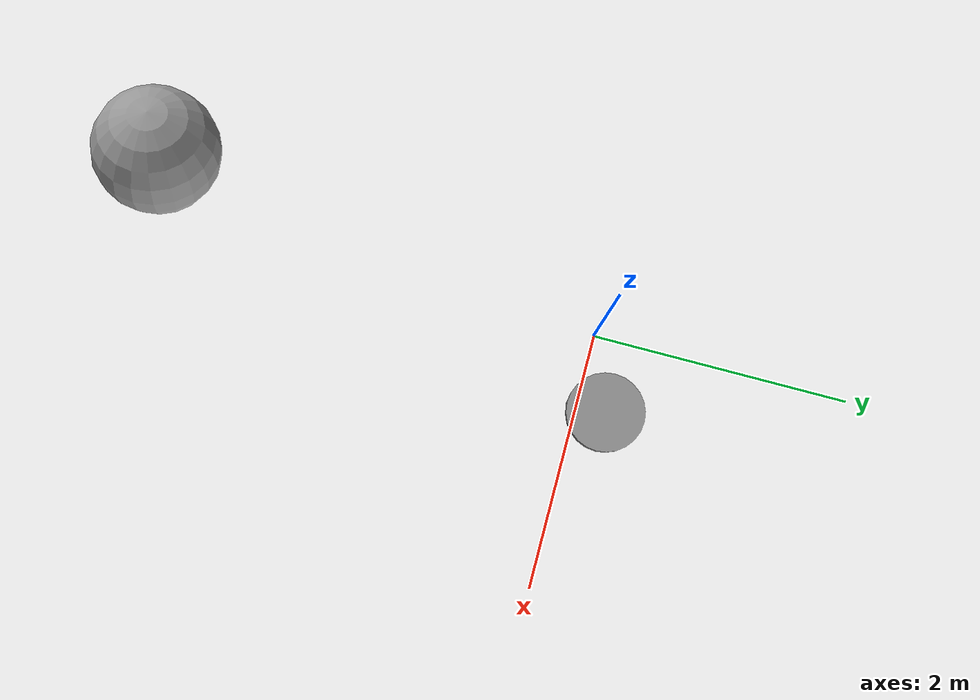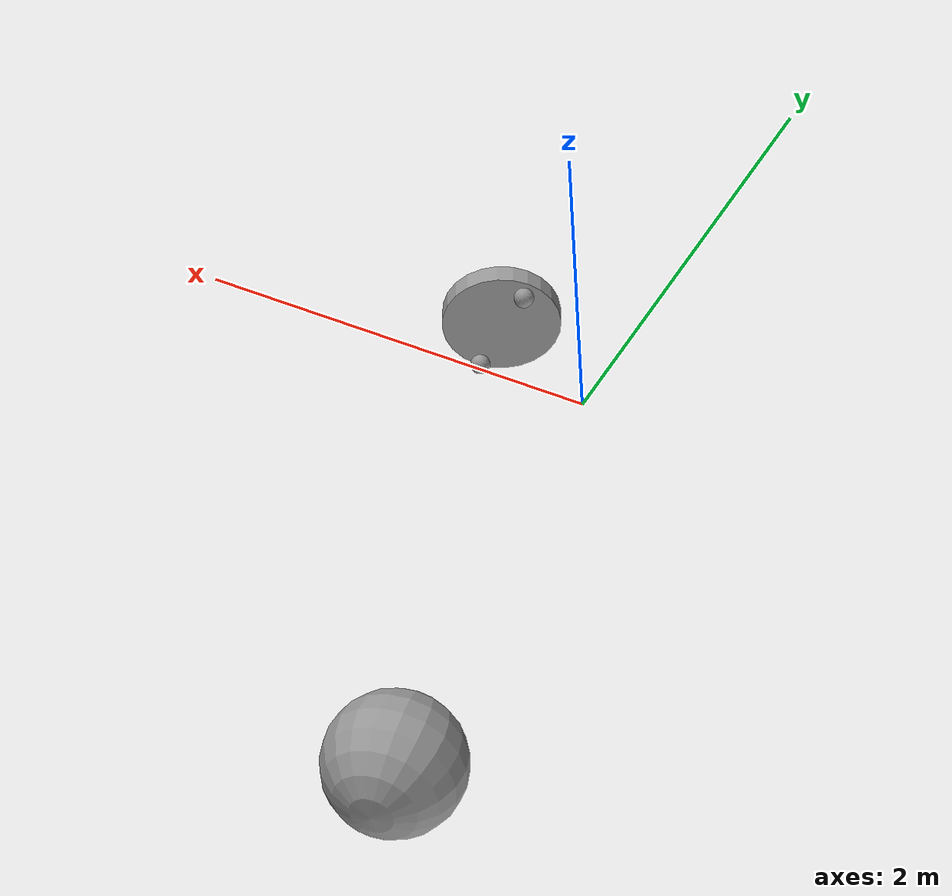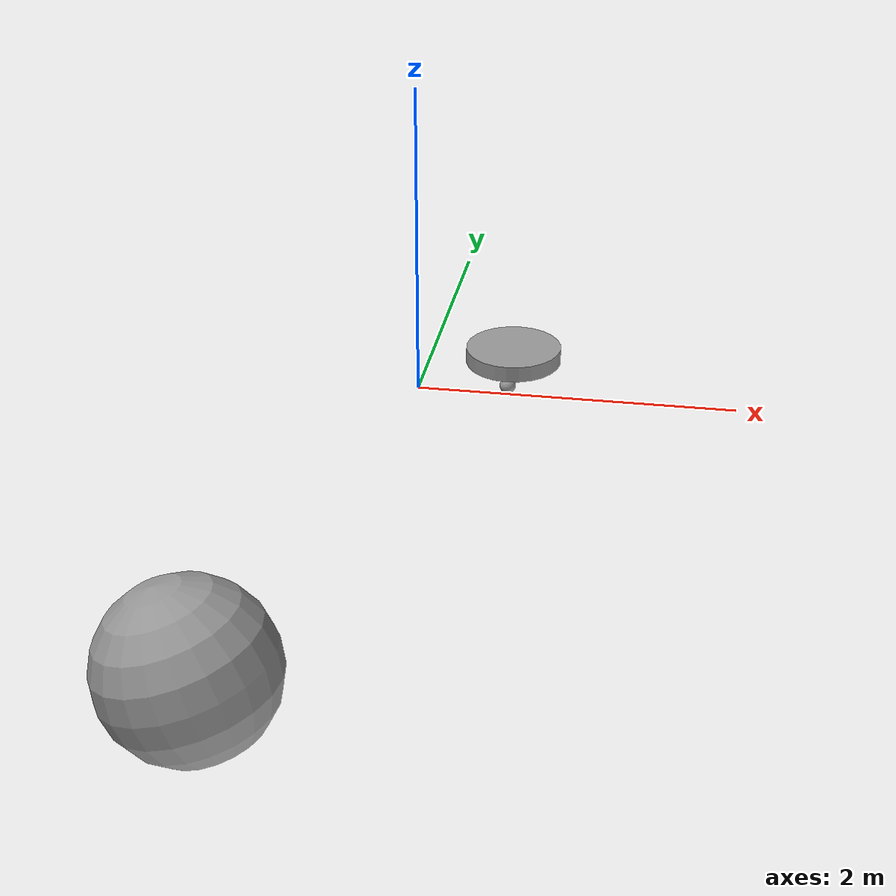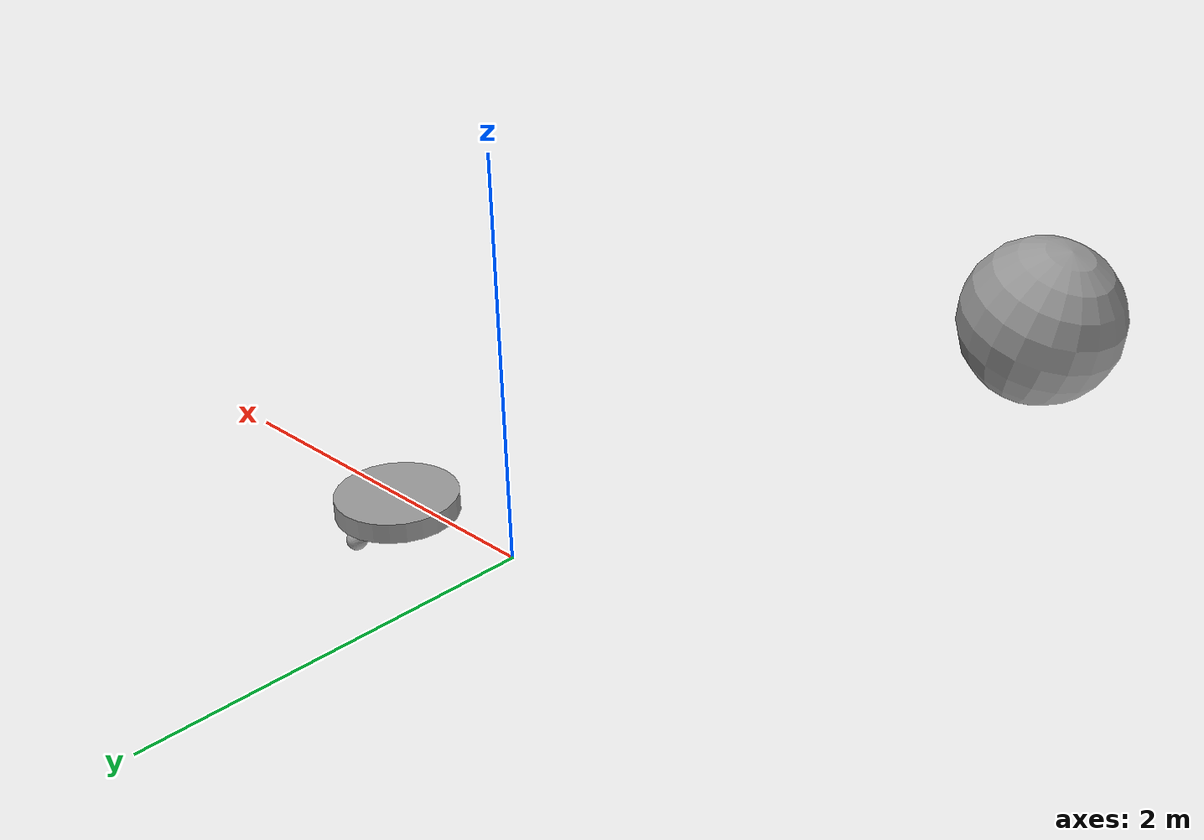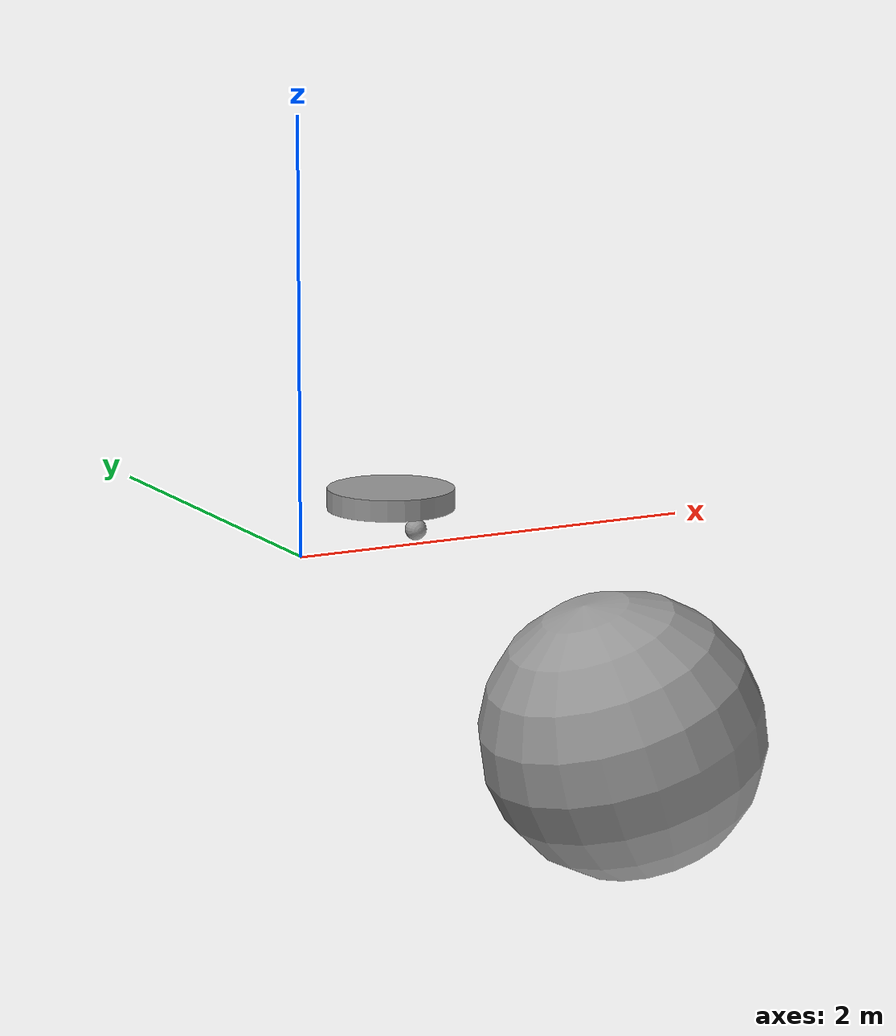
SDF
<?xml version='1.0'?>
<sdf version='1.7'>
  <model name='MYCLEANBOT'>
    <link name='link_0'>
      <inertial>
        <mass>1</mass>
        <inertia>
          <ixx>0.145833</ixx>
          <ixy>0</ixy>
          <ixz>0</ixz>
          <iyy>0.145833</iyy>
          <iyz>0</iyz>
          <izz>0.125</izz>
        </inertia>
        <pose>0 0 0 0 -0 0</pose>
      </inertial>
      <pose>0.57158 0.218692 0.175 0 -0 0</pose>
      <gravity>1</gravity>
      <self_collide>0</self_collide>
      <kinematic>0</kinematic>
      <enable_wind>0</enable_wind>
      <visual name='visual'>
        <pose>0 0 0 0 -0 0</pose>
        <geometry>
          <cylinder>
            <radius>0.3</radius>
            <length>0.1</length>
          </cylinder>
        </geometry>
        <material>
          <lighting>1</lighting>
          <script>
            <uri>file://media/materials/scripts/gazebo.material</uri>
            <name>Gazebo/Grey</name>
          </script>
          <shader type='pixel'>
            <normal_map>__default__</normal_map>
          </shader>
          <ambient>0.3 0.3 0.3 1</ambient>
          <diffuse>0.7 0.7 0.7 1</diffuse>
          <specular>0.01 0.01 0.01 1</specular>
          <emissive>0 0 0 1</emissive>
        </material>
        <transparency>0</transparency>
        <cast_shadows>1</cast_shadows>
      </visual>
      <collision name='collision'>
        <laser_retro>0</laser_retro>
        <max_contacts>10</max_contacts>
        <pose>0 0 0 0 -0 0</pose>
        <geometry>
          <cylinder>
            <radius>0.3</radius>
            <length>0.1</length>
          </cylinder>
        </geometry>
        <surface>
          <friction>
            <ode>
              <mu>1</mu>
              <mu2>1</mu2>
              <fdir1>0 0 0</fdir1>
              <slip1>0</slip1>
              <slip2>0</slip2>
            </ode>
            <torsional>
              <coefficient>1</coefficient>
              <patch_radius>0</patch_radius>
              <surface_radius>0</surface_radius>
              <use_patch_radius>1</use_patch_radius>
              <ode>
                <slip>0</slip>
              </ode>
            </torsional>
          </friction>
          <bounce>
            <restitution_coefficient>0</restitution_coefficient>
            <threshold>1e+06</threshold>
          </bounce>
          <contact>
            <collide_without_contact>0</collide_without_contact>
            <collide_without_contact_bitmask>1</collide_without_contact_bitmask>
            <collide_bitmask>1</collide_bitmask>
            <ode>
              <soft_cfm>0</soft_cfm>
              <soft_erp>0.2</soft_erp>
              <kp>1e+13</kp>
              <kd>1</kd>
              <max_vel>0.01</max_vel>
              <min_depth>0</min_depth>
            </ode>
            <bullet>
              <split_impulse>1</split_impulse>
              <split_impulse_penetration_threshold>-0.01</split_impulse_penetration_threshold>
              <soft_cfm>0</soft_cfm>
              <soft_erp>0.2</soft_erp>
              <kp>1e+13</kp>
              <kd>1</kd>
            </bullet>
          </contact>
        </surface>
      </collision>
    </link>
    <link name='link_0_0'>
      <inertial>
        <mass>1</mass>
        <inertia>
          <ixx>0.1</ixx>
          <ixy>0</ixy>
          <ixz>0</ixz>
          <iyy>0.1</iyy>
          <iyz>0</iyz>
          <izz>0.1</izz>
        </inertia>
      </inertial>
      <pose>-0.521467 -3.63948 0.182204 0.00194 -0.324487 -0.006175</pose>
      <visual name='visual'>
        <pose>0 0 0 0 -0 0</pose>
        <geometry>
          <sphere>
            <radius>0.5</radius>
          </sphere>
        </geometry>
        <material>
          <lighting>1</lighting>
          <script>
            <uri>file://media/materials/scripts/gazebo.material</uri>
            <name>Gazebo/Grey</name>
          </script>
          <shader type='pixel'/>
        </material>
        <transparency>0</transparency>
        <cast_shadows>1</cast_shadows>
      </visual>
      <collision name='collision'>
        <laser_retro>0</laser_retro>
        <max_contacts>10</max_contacts>
        <pose>0 0 0 0 -0 0</pose>
        <geometry>
          <sphere>
            <radius>0.5</radius>
          </sphere>
        </geometry>
        <surface>
          <friction>
            <ode>
              <mu>1</mu>
              <mu2>1</mu2>
              <fdir1>0 0 0</fdir1>
              <slip1>0</slip1>
              <slip2>0</slip2>
            </ode>
            <torsional>
              <coefficient>1</coefficient>
              <patch_radius>0</patch_radius>
              <surface_radius>0</surface_radius>
              <use_patch_radius>1</use_patch_radius>
              <ode>
                <slip>0</slip>
              </ode>
            </torsional>
          </friction>
          <bounce>
            <restitution_coefficient>0</restitution_coefficient>
            <threshold>1e+06</threshold>
          </bounce>
          <contact>
            <collide_without_contact>0</collide_without_contact>
            <collide_without_contact_bitmask>1</collide_without_contact_bitmask>
            <collide_bitmask>1</collide_bitmask>
            <ode>
              <soft_cfm>0</soft_cfm>
              <soft_erp>0.2</soft_erp>
              <kp>1e+13</kp>
              <kd>1</kd>
              <max_vel>0.01</max_vel>
              <min_depth>0</min_depth>
            </ode>
            <bullet>
              <split_impulse>1</split_impulse>
              <split_impulse_penetration_threshold>-0.01</split_impulse_penetration_threshold>
              <soft_cfm>0</soft_cfm>
              <soft_erp>0.2</soft_erp>
              <kp>1e+13</kp>
              <kd>1</kd>
            </bullet>
          </contact>
        </surface>
      </collision>
    </link>
    <link name='link_1_clone'>
      <inertial>
        <mass>1</mass>
        <inertia>
          <ixx>0.1</ixx>
          <ixy>0</ixy>
          <ixz>0</ixz>
          <iyy>0.1</iyy>
          <iyz>0</iyz>
          <izz>0.1</izz>
        </inertia>
        <pose>0 0 0 0 -0 0</pose>
      </inertial>
      <pose>0.57158 0.468693 0.075 -1.57 0 0</pose>
      <gravity>1</gravity>
      <self_collide>0</self_collide>
      <kinematic>0</kinematic>
      <enable_wind>0</enable_wind>
      <visual name='visual'>
        <pose>0 0 0 0 -0 0</pose>
        <geometry>
          <sphere>
            <radius>0.05</radius>
          </sphere>
        </geometry>
        <material>
          <lighting>1</lighting>
          <script>
            <uri>file://media/materials/scripts/gazebo.material</uri>
            <name>Gazebo/Grey</name>
          </script>
          <shader type='pixel'>
            <normal_map>__default__</normal_map>
          </shader>
          <ambient>0.3 0.3 0.3 1</ambient>
          <diffuse>0.7 0.7 0.7 1</diffuse>
          <specular>0.01 0.01 0.01 1</specular>
          <emissive>0 0 0 1</emissive>
        </material>
        <transparency>0</transparency>
        <cast_shadows>1</cast_shadows>
      </visual>
      <collision name='collision'>
        <laser_retro>0</laser_retro>
        <max_contacts>10</max_contacts>
        <pose>0 0 0 0 -0 0</pose>
        <geometry>
          <sphere>
            <radius>0.05</radius>
          </sphere>
        </geometry>
        <surface>
          <friction>
            <ode>
              <mu>1</mu>
              <mu2>1</mu2>
              <fdir1>0 0 0</fdir1>
              <slip1>0</slip1>
              <slip2>0</slip2>
            </ode>
            <torsional>
              <coefficient>1</coefficient>
              <patch_radius>0</patch_radius>
              <surface_radius>0</surface_radius>
              <use_patch_radius>1</use_patch_radius>
              <ode>
                <slip>0</slip>
              </ode>
            </torsional>
          </friction>
          <bounce>
            <restitution_coefficient>0</restitution_coefficient>
            <threshold>1e+06</threshold>
          </bounce>
          <contact>
            <collide_without_contact>0</collide_without_contact>
            <collide_without_contact_bitmask>1</collide_without_contact_bitmask>
            <collide_bitmask>1</collide_bitmask>
            <ode>
              <soft_cfm>0</soft_cfm>
              <soft_erp>0.2</soft_erp>
              <kp>1e+13</kp>
              <kd>1</kd>
              <max_vel>0.01</max_vel>
              <min_depth>0</min_depth>
            </ode>
            <bullet>
              <split_impulse>1</split_impulse>
              <split_impulse_penetration_threshold>-0.01</split_impulse_penetration_threshold>
              <soft_cfm>0</soft_cfm>
              <soft_erp>0.2</soft_erp>
              <kp>1e+13</kp>
              <kd>1</kd>
            </bullet>
          </contact>
        </surface>
      </collision>
    </link>
    <link name='link_1_clone_clone'>
      <inertial>
        <mass>1</mass>
        <inertia>
          <ixx>0.1</ixx>
          <ixy>0</ixy>
          <ixz>0</ixz>
          <iyy>0.1</iyy>
          <iyz>0</iyz>
          <izz>0.1</izz>
        </inertia>
        <pose>0 0 0 0 -0 0</pose>
      </inertial>
      <pose>0.57158 -0.031307 0.075 1.57 -0 0</pose>
      <gravity>1</gravity>
      <self_collide>0</self_collide>
      <kinematic>0</kinematic>
      <enable_wind>0</enable_wind>
      <visual name='visual'>
        <pose>0 0 0 0 -0 0</pose>
        <geometry>
          <sphere>
            <radius>0.05</radius>
          </sphere>
        </geometry>
        <material>
          <lighting>1</lighting>
          <script>
            <uri>file://media/materials/scripts/gazebo.material</uri>
            <name>Gazebo/Grey</name>
          </script>
          <shader type='pixel'>
            <normal_map>__default__</normal_map>
          </shader>
          <ambient>0.3 0.3 0.3 1</ambient>
          <diffuse>0.7 0.7 0.7 1</diffuse>
          <specular>0.01 0.01 0.01 1</specular>
          <emissive>0 0 0 1</emissive>
        </material>
        <transparency>0</transparency>
        <cast_shadows>1</cast_shadows>
      </visual>
      <collision name='collision'>
        <laser_retro>0</laser_retro>
        <max_contacts>10</max_contacts>
        <pose>0 0 0 0 -0 0</pose>
        <geometry>
          <sphere>
            <radius>0.05</radius>
          </sphere>
        </geometry>
        <surface>
          <friction>
            <ode>
              <mu>1</mu>
              <mu2>1</mu2>
              <fdir1>0 0 0</fdir1>
              <slip1>0</slip1>
              <slip2>0</slip2>
            </ode>
            <torsional>
              <coefficient>1</coefficient>
              <patch_radius>0</patch_radius>
              <surface_radius>0</surface_radius>
              <use_patch_radius>1</use_patch_radius>
              <ode>
                <slip>0</slip>
              </ode>
            </torsional>
          </friction>
          <bounce>
            <restitution_coefficient>0</restitution_coefficient>
            <threshold>1e+06</threshold>
          </bounce>
          <contact>
            <collide_without_contact>0</collide_without_contact>
            <collide_without_contact_bitmask>1</collide_without_contact_bitmask>
            <collide_bitmask>1</collide_bitmask>
            <ode>
              <soft_cfm>0</soft_cfm>
              <soft_erp>0.2</soft_erp>
              <kp>1e+13</kp>
              <kd>1</kd>
              <max_vel>0.01</max_vel>
              <min_depth>0</min_depth>
            </ode>
            <bullet>
              <split_impulse>1</split_impulse>
              <split_impulse_penetration_threshold>-0.01</split_impulse_penetration_threshold>
              <soft_cfm>0</soft_cfm>
              <soft_erp>0.2</soft_erp>
              <kp>1e+13</kp>
              <kd>1</kd>
            </bullet>
          </contact>
        </surface>
      </collision>
    </link>
    <joint name='link_0_JOINT_2' type='revolute'>
      <parent>link_0</parent>
      <child>link_1_clone_clone</child>
      <pose>0 0 0 0 -0.01 0</pose>
      <axis>
        <xyz>0 0 1</xyz>
        <limit>
          <lower>-1.79769e+308</lower>
          <upper>1.79769e+308</upper>
          <effort>-1</effort>
          <velocity>-1</velocity>
        </limit>
        <dynamics>
          <spring_reference>0</spring_reference>
          <spring_stiffness>0</spring_stiffness>
          <damping>0</damping>
          <friction>0</friction>
        </dynamics>
      </axis>
      <physics>
        <ode>
          <limit>
            <cfm>0</cfm>
            <erp>0.2</erp>
          </limit>
          <suspension>
            <cfm>0</cfm>
            <erp>0.2</erp>
          </suspension>
        </ode>
      </physics>
    </joint>
    <joint name='link_0_JOINT_3' type='revolute'>
      <parent>link_0</parent>
      <child>link_1_clone</child>
      <pose>0 0 0 0 -0 0</pose>
      <axis>
        <xyz>0 0 1</xyz>
        <limit>
          <lower>-1.79769e+308</lower>
          <upper>1.79769e+308</upper>
          <effort>-1</effort>
          <velocity>-1</velocity>
        </limit>
        <dynamics>
          <spring_reference>0</spring_reference>
          <spring_stiffness>0</spring_stiffness>
          <damping>0</damping>
          <friction>0</friction>
        </dynamics>
      </axis>
      <physics>
        <ode>
          <limit>
            <cfm>0</cfm>
            <erp>0.2</erp>
          </limit>
          <suspension>
            <cfm>0</cfm>
            <erp>0.2</erp>
          </suspension>
        </ode>
      </physics>
    </joint>
    <static>0</static>
    <allow_auto_disable>1</allow_auto_disable>
  </model>
</sdf>
